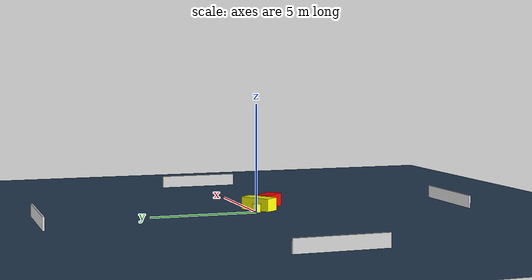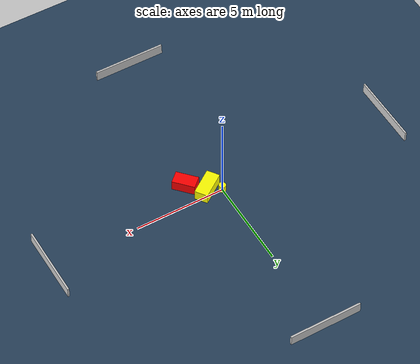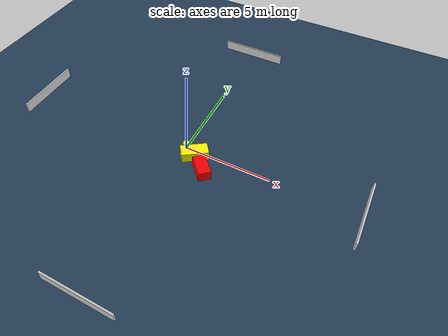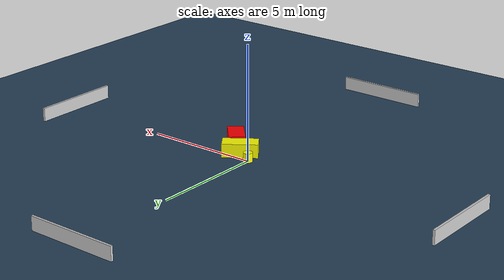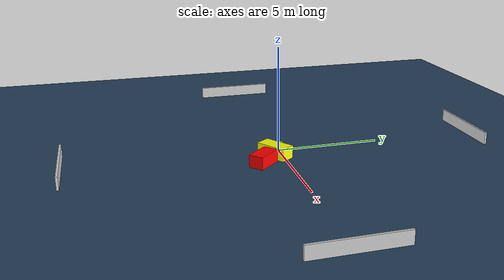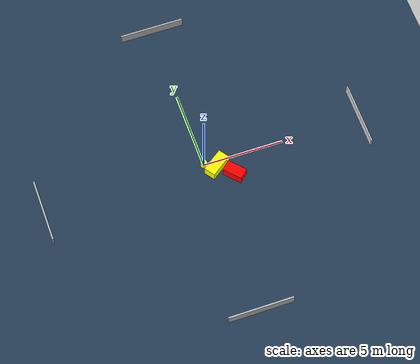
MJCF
<?xml version="1.0" ?>
<mujoco model="generated_environment">
  <option timestep="0.01" integrator="RK4" cone="elliptic"/>
  <default>
    <geom density="1"/>
  </default>
  <asset>
    <texture builtin="gradient" height="3072" name="skybox" rgb1="0.3 0.5 0.7" rgb2="0 0 0" type="skybox" width="512"/>
    <texture builtin="checker" height="300" name="groundplane" rgb1="0.2 0.3 0.4" rgb2="0.1 0.2 0.3" type="2d" width="300"/>
    <material name="groundplane" reflectance="0.2" texrepeat="5 5" texture="groundplane"/>
  </asset>
  <worldbody>
    <light dir="0 0 -1" directional="true" pos="0 0 1.5"/>
    <geom condim="3" friction="0.5 0.005 0.001" material="groundplane" name="floor" pos="0 0 0" size="0 0 0.05" type="plane"/>
    <body name="walls">
      <geom name="wall_1" condim="4" pos="-10.0 0.0 0.3" rgba="0.800000011920929 0.800000011920929 0.800000011920929 1.0" size="0.05 2.0 0.3" type="box"/>
      <geom name="wall_2" condim="4" pos="10.0 0.0 0.3" rgba="0.800000011920929 0.800000011920929 0.800000011920929 1.0" size="0.05 2.0 0.3" type="box"/>
      <geom name="wall_3" condim="4" pos="0.0 -10.0 0.3" rgba="0.800000011920929 0.800000011920929 0.800000011920929 1.0" size="2.0 0.05 0.3" type="box"/>
      <geom name="wall_4" condim="4" pos="0.0 10.0 0.3" rgba="0.800000011920929 0.800000011920929 0.800000011920929 1.0" size="2.0 0.05 0.3" type="box"/>
    </body>
    <body name="robot">
      <joint name="joint_x" type="slide" pos="0 0 0" axis="1 0 0"/>
      <joint name="joint_y" type="slide" pos="0 0 0" axis="0 1 0"/>
      <geom name="robot" type="cylinder" pos="0.0 0.0 0.2" size="0.2 0.2 0.0" mass="5.0" friction="1.0 0.005 0.0001" condim="4" rgba="1.0 1.0 0.0 1.0"/>
    </body>
    <body name="obstacle_1_movable">
      <geom name="obstacle_1_movable" condim="4" pos="0.693119557249364 -0.3606326364057934 0.3" euler="0 0 215.28444909122805" friction="0.0 0.005 0.001" rgba="1.0 1.0 0.0 1.0" size="0.7627035485181348 0.3642846323387454 0.3" type="box" mass="0.1"/>
      <joint type="free"/>
    </body>
    <body name="obstacle_2_static">
      <geom name="obstacle_2_static" condim="4" pos="1.5457540584019607 -1.1431796319274803 0.3" euler="0 0 222.43681164626915" friction="0.0 0.005 0.001" rgba="1.0 0.0 0.0 1.0" size="0.3537193417458824 0.6267925973867843 0.3" type="box"/>
    </body>
  </worldbody>
  <actuator>
    <motor name="actuator_x" joint="joint_x" gear="1" ctrlrange="-1 1"/>
    <motor name="actuator_y" joint="joint_y" gear="1" ctrlrange="-1 1"/>
  </actuator>
</mujoco>
